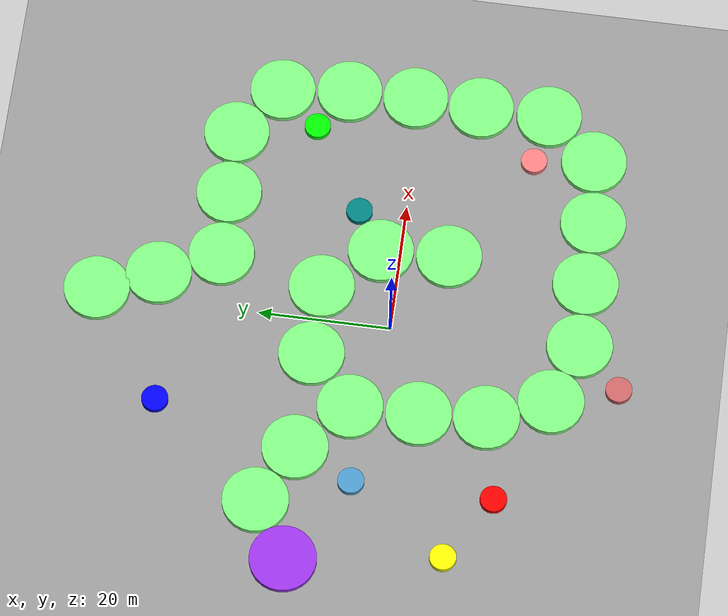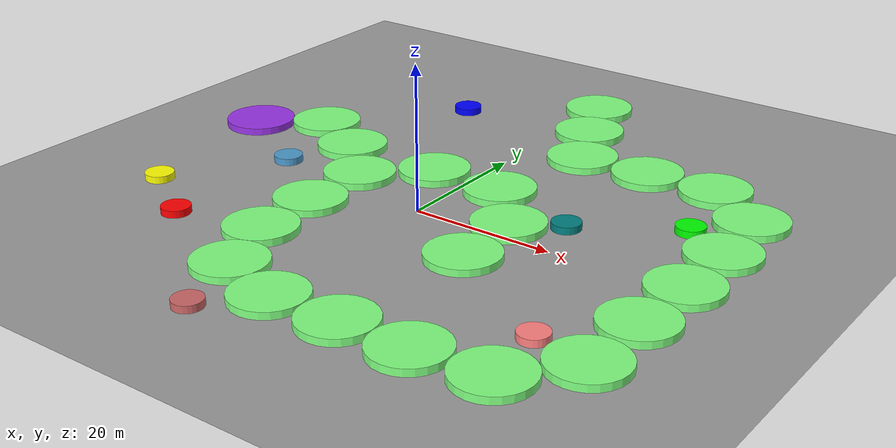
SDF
<sdf version="1.10">
 <world name="default">
  <gravity>0 0 -9.8000000000000007</gravity>
  <magnetic_field>5.5644999999999998e-06 2.2875799999999999e-05 -4.2388400000000002e-05</magnetic_field>
  <atmosphere type="adiabatic"/>
  <physics type="ode">
   <max_step_size>0.001</max_step_size>
   <real_time_factor>1</real_time_factor>
   <real_time_update_rate>1000</real_time_update_rate>
  </physics>
  <scene>
   <ambient>0.400000006 0.400000006 0.400000006 1</ambient>
   <background>0.699999988 0.699999988 0.699999988 1</background>
   <shadows>true</shadows>
  </scene>
  <model name="ground_plane">
   <static>true</static>
   <link name="link">
    <collision name="collision">
     <geometry><plane><normal>0 0 1</normal><size>100 100</size></plane></geometry>
     <surface><contact><collide_without_contact_bitmask>1</collide_without_contact_bitmask></contact></surface>
    </collision>
    <visual name="visual">
     <geometry><plane><normal>0 0 1</normal><size>100 100</size></plane></geometry>
     <material>
      <ambient>0.600000024 0.600000024 0.600000024 1</ambient>
      <diffuse>0.600000024 0.600000024 0.600000024 1</diffuse>
     </material>
    </visual>
    <inertial>
     <mass>1</mass>
     <inertia><ixx>1</ixx><ixy>0</ixy><ixz>0</ixz><iyy>1</iyy><iyz>0</iyz><izz>1</izz></inertia>
    </inertial>
   </link>
  </model>
  <model name="moving_cylinder_1">
   <static>true</static>
   <pose>-25.100000000000001 -18.5 0.5 0 0 0</pose>
   <link name="link">
    <collision name="collision">
     <geometry><cylinder><radius>2</radius><length>1</length></cylinder></geometry>
    </collision>
    <visual name="visual">
     <geometry><cylinder><radius>2</radius><length>1</length></cylinder></geometry>
     <material><ambient>1 0 0 1</ambient></material>
    </visual>
    <inertial>
     <mass>1</mass>
     <inertia><ixx>1</ixx><ixy>0</ixy><ixz>0</ixz><iyy>1</iyy><iyz>0</iyz><izz>1</izz></inertia>
    </inertial>
   </link>
  </model>
  <model name="moving_cylinder_2">
   <static>true</static>
   <pose>31.399999999999999 15.199999999999999 0.5 0 0 0</pose>
   <link name="link">
    <collision name="collision">
     <geometry><cylinder><radius>2</radius><length>1</length></cylinder></geometry>
    </collision>
    <visual name="visual">
     <geometry><cylinder><radius>2</radius><length>1</length></cylinder></geometry>
     <material><ambient>0 1 0 1</ambient></material>
    </visual>
    <inertial>
     <mass>1</mass>
     <inertia><ixx>1</ixx><ixy>0</ixy><ixz>0</ixz><iyy>1</iyy><iyz>0</iyz><izz>1</izz></inertia>
    </inertial>
   </link>
  </model>
  <model name="moving_cylinder_3">
   <static>true</static>
   <pose>-15.9 33.299999999999997 0.5 0 0 0</pose>
   <link name="link">
    <collision name="collision">
     <geometry><cylinder><radius>2</radius><length>1</length></cylinder></geometry>
    </collision>
    <visual name="visual">
     <geometry><cylinder><radius>2</radius><length>1</length></cylinder></geometry>
     <material><ambient>0 0 1 1</ambient></material>
    </visual>
    <inertial>
     <mass>1</mass>
     <inertia><ixx>1</ixx><ixy>0</ixy><ixz>0</ixz><iyy>1</iyy><iyz>0</iyz><izz>1</izz></inertia>
    </inertial>
   </link>
  </model>
  <model name="moving_cylinder_4">
   <static>true</static>
   <pose>-35 -12.199999999999999 0.5 0 0 0</pose>
   <link name="link">
    <collision name="collision">
     <geometry><cylinder><radius>2</radius><length>1</length></cylinder></geometry>
    </collision>
    <visual name="visual">
     <geometry><cylinder><radius>2</radius><length>1</length></cylinder></geometry>
     <material><ambient>1 1 0 1</ambient></material>
    </visual>
    <inertial>
     <mass>1</mass>
     <inertia><ixx>1</ixx><ixy>0</ixy><ixz>0</ixz><iyy>1</iyy><iyz>0</iyz><izz>1</izz></inertia>
    </inertial>
   </link>
  </model>
  <model name="moving_cylinder_5">
   <static>true</static>
   <pose>-5.5999999999999996 -35 0.5 0 0 0</pose>
   <link name="link">
    <collision name="collision">
     <geometry><cylinder><radius>2</radius><length>1</length></cylinder></geometry>
    </collision>
    <visual name="visual">
     <geometry><cylinder><radius>2</radius><length>1</length></cylinder></geometry>
     <material><ambient>0.800000012 0.400000006 0.400000006 1</ambient></material>
    </visual>
    <inertial>
     <mass>1</mass>
     <inertia><ixx>1</ixx><ixy>0</ixy><ixz>0</ixz><iyy>1</iyy><iyz>0</iyz><izz>1</izz></inertia>
    </inertial>
   </link>
  </model>
  <model name="moving_cylinder_6">
   <static>true</static>
   <pose>18.215400695800781 7.0263118743896484 0.5 0 0 0</pose>
   <link name="link">
    <collision name="collision">
     <geometry><cylinder><radius>2</radius><length>1</length></cylinder></geometry>
    </collision>
    <visual name="visual">
     <geometry><cylinder><radius>2</radius><length>1</length></cylinder></geometry>
     <material><ambient>0 0.5 0.5 1</ambient></material>
    </visual>
    <inertial>
     <mass>1</mass>
     <inertia><ixx>1</ixx><ixy>0</ixy><ixz>0</ixz><iyy>1</iyy><iyz>0</iyz><izz>1</izz></inertia>
    </inertial>
   </link>
  </model>
  <model name="moving_cylinder_7">
   <static>true</static>
   <pose>-25 2.7000000000000002 0.5 0 0 0</pose>
   <link name="link">
    <collision name="collision">
     <geometry><cylinder><radius>2</radius><length>1</length></cylinder></geometry>
    </collision>
    <visual name="visual">
     <geometry><cylinder><radius>2</radius><length>1</length></cylinder></geometry>
     <material><ambient>0.300000012 0.600000024 0.800000012 1</ambient></material>
    </visual>
    <inertial>
     <mass>1</mass>
     <inertia><ixx>1</ixx><ixy>0</ixy><ixz>0</ixz><iyy>1</iyy><iyz>0</iyz><izz>1</izz></inertia>
    </inertial>
   </link>
  </model>
  <model name="moving_cylinder_8">
   <static>true</static>
   <pose>29.899999999999999 -18.300000000000001 0.5 0 0 0</pose>
   <link name="link">
    <collision name="collision">
     <geometry><cylinder><radius>2</radius><length>1</length></cylinder></geometry>
    </collision>
    <visual name="visual">
     <geometry><cylinder><radius>2</radius><length>1</length></cylinder></geometry>
     <material><ambient>1 0.5 0.5 1</ambient></material>
    </visual>
    <inertial>
     <mass>1</mass>
     <inertia><ixx>1</ixx><ixy>0</ixy><ixz>0</ixz><iyy>1</iyy><iyz>0</iyz><izz>1</izz></inertia>
    </inertial>
   </link>
  </model>
  <model name="moving_cylinder_9">
   <static>true</static>
   <pose>-38.200000000000003 11 0.5 0 0 0</pose>
   <link name="link">
    <collision name="collision">
     <geometry><cylinder><radius>5</radius><length>1</length></cylinder></geometry>
    </collision>
    <visual name="visual">
     <geometry><cylinder><radius>5</radius><length>1</length></cylinder></geometry>
     <material><ambient>0.600000024 0.200000003 0.899999976 1</ambient></material>
    </visual>
    <inertial>
     <mass>1</mass>
     <inertia><ixx>1</ixx><ixy>0</ixy><ixz>0</ixz><iyy>1</iyy><iyz>0</iyz><izz>1</izz></inertia>
    </inertial>
   </link>
  </model>
  <model name="moving_cylinder_10">
   <static>true</static>
   <pose>18.699999999999999 27.100000000000001 0.5 0 0 0</pose>
   <link name="link">
    <collision name="collision">
     <geometry><cylinder><radius>5</radius><length>1</length></cylinder></geometry>
    </collision>
    <visual name="visual">
     <geometry><cylinder><radius>5</radius><length>1</length></cylinder></geometry>
     <material><ambient>0.5 1 0.5 1</ambient></material>
    </visual>
    <inertial>
     <mass>1</mass>
     <inertia><ixx>1</ixx><ixy>0</ixy><ixz>0</ixz><iyy>1</iyy><iyz>0</iyz><izz>1</izz></inertia>
    </inertial>
   </link>
  </model>
  <model name="moving_cylinder_11">
   <static>true</static>
   <pose>28.789109487139029 27.353598416478576 0.5 0 0 0</pose>
   <link name="link">
    <collision name="collision">
     <geometry><cylinder><radius>5</radius><length>1</length></cylinder></geometry>
    </collision>
    <visual name="visual">
     <geometry><cylinder><radius>5</radius><length>1</length></cylinder></geometry>
     <material><ambient>0.5 1 0.5 1</ambient></material>
    </visual>
   </link>
  </model>
  <model name="moving_cylinder_12">
   <static>true</static>
   <pose>36.821050008611053 21.323088967489401 0.5 0 0 0</pose>
   <link name="link">
    <collision name="collision">
     <geometry><cylinder><radius>5</radius><length>1</length></cylinder></geometry>
    </collision>
    <visual name="visual">
     <geometry><cylinder><radius>5</radius><length>1</length></cylinder></geometry>
     <material><ambient>0.5 1 0.5 1</ambient></material>
    </visual>
   </link>
  </model>
  <model name="moving_cylinder_13">
   <static>true</static>
   <pose>37.876146426909671 11.109972079700153 0.5 0 0 0</pose>
   <link name="link">
    <collision name="collision">
     <geometry><cylinder><radius>5</radius><length>1</length></cylinder></geometry>
    </collision>
    <visual name="visual">
     <geometry><cylinder><radius>5</radius><length>1</length></cylinder></geometry>
     <material><ambient>0.5 1 0.5 1</ambient></material>
    </visual>
   </link>
  </model>
  <model name="moving_cylinder_14">
   <static>true</static>
   <pose>38.088748783338417 0.91967666526617364 0.5 0 0 0</pose>
   <link name="link">
    <collision name="collision">
     <geometry><cylinder><radius>5</radius><length>1</length></cylinder></geometry>
    </collision>
    <visual name="visual">
     <geometry><cylinder><radius>5</radius><length>1</length></cylinder></geometry>
     <material><ambient>0.5 1 0.5 1</ambient></material>
    </visual>
   </link>
  </model>
  <model name="moving_cylinder_15">
   <static>true</static>
   <pose>37.728131469176276 -9.2460475246674783 0.5 0 0 0</pose>
   <link name="link">
    <collision name="collision">
     <geometry><cylinder><radius>5</radius><length>1</length></cylinder></geometry>
    </collision>
    <visual name="visual">
     <geometry><cylinder><radius>5</radius><length>1</length></cylinder></geometry>
     <material><ambient>0.5 1 0.5 1</ambient></material>
    </visual>
   </link>
  </model>
  <model name="moving_cylinder_16">
   <static>true</static>
   <pose>37.613380369497179 -19.757383936378488 0.5 0 0 0</pose>
   <link name="link">
    <collision name="collision">
     <geometry><cylinder><radius>5</radius><length>1</length></cylinder></geometry>
    </collision>
    <visual name="visual">
     <geometry><cylinder><radius>5</radius><length>1</length></cylinder></geometry>
     <material><ambient>0.5 1 0.5 1</ambient></material>
    </visual>
   </link>
  </model>
  <model name="moving_cylinder_17">
   <static>true</static>
   <pose>30.913677807027938 -27.392619820683258 0.5 0 0 0</pose>
   <link name="link">
    <collision name="collision">
     <geometry><cylinder><radius>5</radius><length>1</length></cylinder></geometry>
    </collision>
    <visual name="visual">
     <geometry><cylinder><radius>5</radius><length>1</length></cylinder></geometry>
     <material><ambient>0.5 1 0.5 1</ambient></material>
    </visual>
   </link>
  </model>
  <model name="moving_cylinder_18">
   <static>true</static>
   <pose>20.801909503736844 -28.339821706497233 0.5 0 0 0</pose>
   <link name="link">
    <collision name="collision">
     <geometry><cylinder><radius>5</radius><length>1</length></cylinder></geometry>
    </collision>
    <visual name="visual">
     <geometry><cylinder><radius>5</radius><length>1</length></cylinder></geometry>
     <material><ambient>0.5 1 0.5 1</ambient></material>
    </visual>
   </link>
  </model>
  <model name="moving_cylinder_19">
   <static>true</static>
   <pose>10.733389901877011 -28.262699547093735 0.5 0 0 0</pose>
   <link name="link">
    <collision name="collision">
     <geometry><cylinder><radius>5</radius><length>1</length></cylinder></geometry>
    </collision>
    <visual name="visual">
     <geometry><cylinder><radius>5</radius><length>1</length></cylinder></geometry>
     <material><ambient>0.5 1 0.5 1</ambient></material>
    </visual>
   </link>
  </model>
  <model name="moving_cylinder_20">
   <static>true</static>
   <pose>0.66140178595651733 -28.462214288480322 0.5 0 0 0</pose>
   <link name="link">
    <collision name="collision">
     <geometry><cylinder><radius>5</radius><length>1</length></cylinder></geometry>
    </collision>
    <visual name="visual">
     <geometry><cylinder><radius>5</radius><length>1</length></cylinder></geometry>
     <material><ambient>0.5 1 0.5 1</ambient></material>
    </visual>
   </link>
  </model>
  <model name="moving_cylinder_21">
   <static>true</static>
   <pose>-8.7282936021540944 -25.202778341422459 0.5 0 0 0</pose>
   <link name="link">
    <collision name="collision">
     <geometry><cylinder><radius>5</radius><length>1</length></cylinder></geometry>
    </collision>
    <visual name="visual">
     <geometry><cylinder><radius>5</radius><length>1</length></cylinder></geometry>
     <material><ambient>0.5 1 0.5 1</ambient></material>
    </visual>
   </link>
  </model>
  <model name="moving_cylinder_22">
   <static>true</static>
   <pose>-12.468609087340889 -15.976988225588176 0.5 0 0 0</pose>
   <link name="link">
    <collision name="collision">
     <geometry><cylinder><radius>5</radius><length>1</length></cylinder></geometry>
    </collision>
    <visual name="visual">
     <geometry><cylinder><radius>5</radius><length>1</length></cylinder></geometry>
     <material><ambient>0.5 1 0.5 1</ambient></material>
    </visual>
   </link>
  </model>
  <model name="moving_cylinder_23">
   <static>true</static>
   <pose>-13.181461190576854 -5.8998051646721379 0.5 0 0 0</pose>
   <link name="link">
    <collision name="collision">
     <geometry><cylinder><radius>5</radius><length>1</length></cylinder></geometry>
    </collision>
    <visual name="visual">
     <geometry><cylinder><radius>5</radius><length>1</length></cylinder></geometry>
     <material><ambient>0.5 1 0.5 1</ambient></material>
    </visual>
   </link>
  </model>
  <model name="moving_cylinder_24">
   <static>true</static>
   <pose>-13.35513468840729 4.3641804795332249 0.5 0 0 0</pose>
   <link name="link">
    <collision name="collision">
     <geometry><cylinder><radius>5</radius><length>1</length></cylinder></geometry>
    </collision>
    <visual name="visual">
     <geometry><cylinder><radius>5</radius><length>1</length></cylinder></geometry>
     <material><ambient>0.5 1 0.5 1</ambient></material>
    </visual>
   </link>
  </model>
  <model name="moving_cylinder_25">
   <static>true</static>
   <pose>8.5300112520538072 26.79578032693728 0.5 0 0 0</pose>
   <link name="link">
    <collision name="collision">
     <geometry><cylinder><radius>5</radius><length>1</length></cylinder></geometry>
    </collision>
    <visual name="visual">
     <geometry><cylinder><radius>5</radius><length>1</length></cylinder></geometry>
     <material><ambient>0.5 1 0.5 1</ambient></material>
    </visual>
   </link>
  </model>
  <model name="moving_cylinder_26">
   <static>true</static>
   <pose>0.61050571893146177 44.634962997836709 0.5 0 0 0</pose>
   <link name="link">
    <collision name="collision">
     <geometry><cylinder><radius>5</radius><length>1</length></cylinder></geometry>
    </collision>
    <visual name="visual">
     <geometry><cylinder><radius>5</radius><length>1</length></cylinder></geometry>
     <material><ambient>0.5 1 0.5 1</ambient></material>
    </visual>
   </link>
  </model>
  <model name="moving_cylinder_27">
   <static>true</static>
   <pose>4.2570589520719357 35.740485094827399 0.5 0 0 0</pose>
   <link name="link">
    <collision name="collision">
     <geometry><cylinder><radius>5</radius><length>1</length></cylinder></geometry>
    </collision>
    <visual name="visual">
     <geometry><cylinder><radius>5</radius><length>1</length></cylinder></geometry>
     <material><ambient>0.5 1 0.5 1</ambient></material>
    </visual>
   </link>
  </model>
  <model name="moving_cylinder_28">
   <static>true</static>
   <pose>-5.6907421468030881 11.169694972897341 0.5 0 0 0</pose>
   <link name="link">
    <collision name="collision">
     <geometry><cylinder><radius>5</radius><length>1</length></cylinder></geometry>
    </collision>
    <visual name="visual">
     <geometry><cylinder><radius>5</radius><length>1</length></cylinder></geometry>
     <material><ambient>0.5 1 0.5 1</ambient></material>
    </visual>
   </link>
  </model>
  <model name="moving_cylinder_29">
   <static>true</static>
   <pose>5.245891484314777 11.079642084485315 0.5 0 0 0</pose>
   <link name="link">
    <collision name="collision">
     <geometry><cylinder><radius>5</radius><length>1</length></cylinder></geometry>
    </collision>
    <visual name="visual">
     <geometry><cylinder><radius>5</radius><length>1</length></cylinder></geometry>
     <material><ambient>0.5 1 0.5 1</ambient></material>
    </visual>
   </link>
  </model>
  <model name="moving_cylinder_30">
   <static>true</static>
   <pose>12.1613362137705 2.9984726909024317 0.5 0 0 0</pose>
   <link name="link">
    <collision name="collision">
     <geometry><cylinder><radius>5</radius><length>1</length></cylinder></geometry>
    </collision>
    <visual name="visual">
     <geometry><cylinder><radius>5</radius><length>1</length></cylinder></geometry>
     <material><ambient>0.5 1 0.5 1</ambient></material>
    </visual>
   </link>
  </model>
  <model name="moving_cylinder_31">
   <static>true</static>
   <pose>12.567534002159334 -7.3457730666494108 0.5 0 0 0</pose>
   <link name="link">
    <collision name="collision">
     <geometry><cylinder><radius>5</radius><length>1</length></cylinder></geometry>
    </collision>
    <visual name="visual">
     <geometry><cylinder><radius>5</radius><length>1</length></cylinder></geometry>
     <material><ambient>0.5 1 0.5 1</ambient></material>
    </visual>
   </link>
  </model>
  <model name="moving_cylinder_32">
   <static>true</static>
   <pose>-20.773193998181192 11.599392987046576 0.5 0 0 0</pose>
   <link name="link">
    <collision name="collision">
     <geometry><cylinder><radius>5</radius><length>1</length></cylinder></geometry>
    </collision>
    <visual name="visual">
     <geometry><cylinder><radius>5</radius><length>1</length></cylinder></geometry>
     <material><ambient>0.5 1 0.5 1</ambient></material>
    </visual>
   </link>
  </model>
  <model name="moving_cylinder_33">
   <static>true</static>
   <pose>-29.710972519822878 16.261262573408086 0.5 0 0 0</pose>
   <link name="link">
    <collision name="collision">
     <geometry><cylinder><radius>5</radius><length>1</length></cylinder></geometry>
    </collision>
    <visual name="visual">
     <geometry><cylinder><radius>5</radius><length>1</length></cylinder></geometry>
     <material><ambient>0.5 1 0.5 1</ambient></material>
    </visual>
   </link>
  </model>
 </world>
</sdf>
